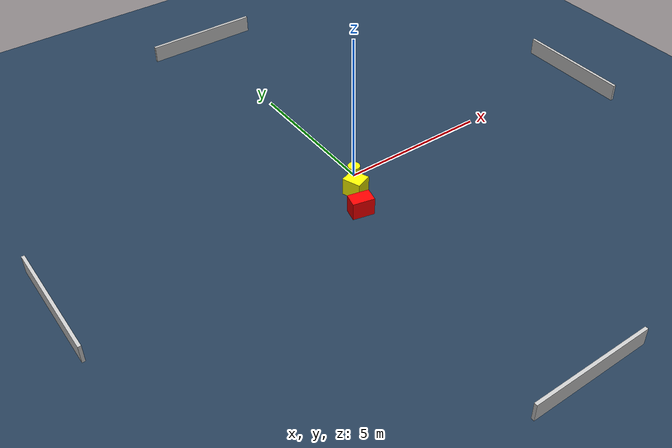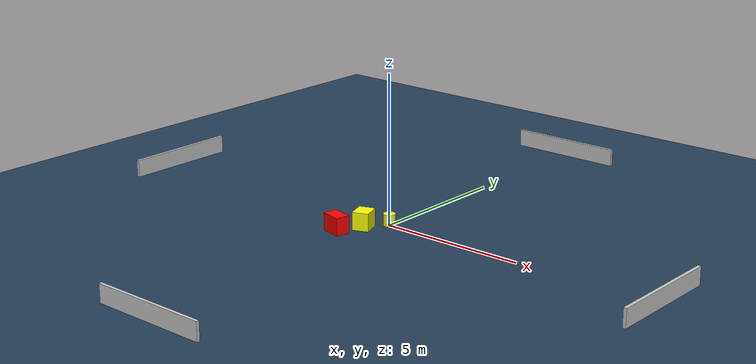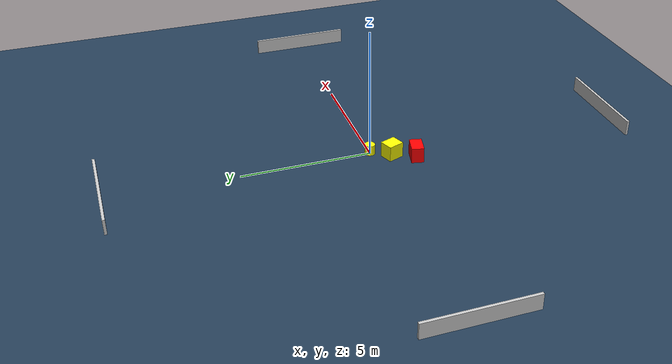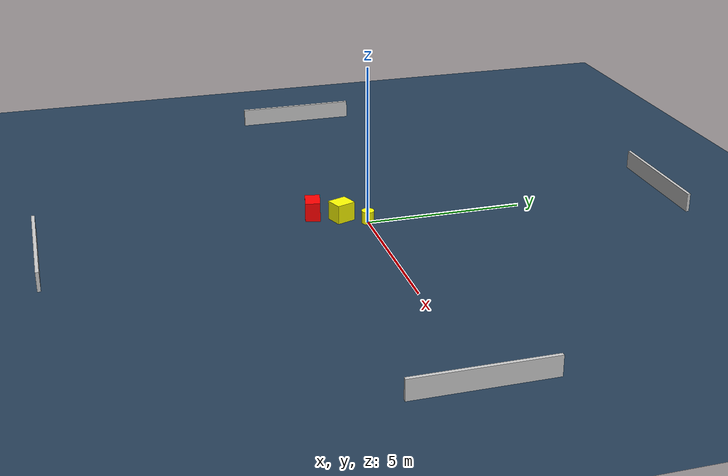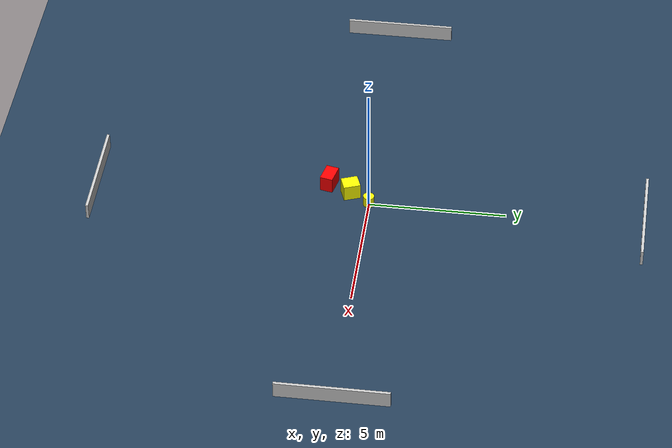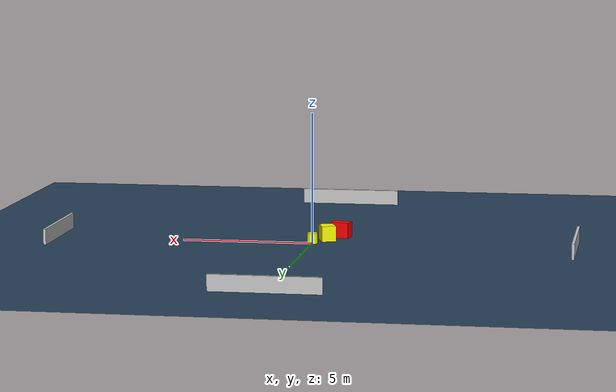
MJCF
<?xml version="1.0" ?>
<mujoco model="generated_environment">
  <option timestep="0.01" integrator="RK4" cone="elliptic"/>
  <default>
    <geom density="1"/>
  </default>
  <asset>
    <texture builtin="gradient" height="3072" name="skybox" rgb1="0.3 0.5 0.7" rgb2="0 0 0" type="skybox" width="512"/>
    <texture builtin="checker" height="300" name="groundplane" rgb1="0.2 0.3 0.4" rgb2="0.1 0.2 0.3" type="2d" width="300"/>
    <material name="groundplane" reflectance="0.2" texrepeat="5 5" texture="groundplane"/>
  </asset>
  <worldbody>
    <light dir="0 0 -1" directional="true" pos="0 0 1.5"/>
    <geom condim="3" friction="0.5 0.005 0.001" material="groundplane" name="floor" pos="0 0 0" size="0 0 0.05" type="plane"/>
    <body name="walls">
      <geom name="wall_1" condim="4" pos="-10.0 0.0 0.3" rgba="0.800000011920929 0.800000011920929 0.800000011920929 1.0" size="0.05 2.0 0.3" type="box"/>
      <geom name="wall_2" condim="4" pos="10.0 0.0 0.3" rgba="0.800000011920929 0.800000011920929 0.800000011920929 1.0" size="0.05 2.0 0.3" type="box"/>
      <geom name="wall_3" condim="4" pos="0.0 -10.0 0.3" rgba="0.800000011920929 0.800000011920929 0.800000011920929 1.0" size="2.0 0.05 0.3" type="box"/>
      <geom name="wall_4" condim="4" pos="0.0 10.0 0.3" rgba="0.800000011920929 0.800000011920929 0.800000011920929 1.0" size="2.0 0.05 0.3" type="box"/>
    </body>
    <body name="robot">
      <joint name="joint_x" type="slide" pos="0 0 0" axis="1 0 0"/>
      <joint name="joint_y" type="slide" pos="0 0 0" axis="0 1 0"/>
      <geom name="robot" type="cylinder" pos="0.0 0.0 0.2" size="0.2 0.2 0.0" mass="5.0" friction="1.0 0.005 0.0001" condim="4" rgba="1.0 1.0 0.0 1.0"/>
    </body>
    <body name="obstacle_1_movable">
      <geom name="obstacle_1_movable" condim="4" pos="-0.45870744337346997 -0.723697016620633 0.3" euler="0 0 110.48239020982946" friction="0.0 0.005 0.001" rgba="1.0 1.0 0.0 1.0" size="0.3104794188407809 0.2716593428078835 0.3" type="box" mass="0.1"/>
      <joint type="free"/>
    </body>
    <body name="obstacle_2_static">
      <geom name="obstacle_2_static" condim="4" pos="-0.8743612693733065 -1.5543606432867223 0.3" euler="0 0 347.35327304488396" friction="0.0 0.005 0.001" rgba="1.0 0.0 0.0 1.0" size="0.3585174798183296 0.2354331779113064 0.3" type="box"/>
    </body>
  </worldbody>
  <actuator>
    <motor name="actuator_x" joint="joint_x" gear="1" ctrlrange="-1 1"/>
    <motor name="actuator_y" joint="joint_y" gear="1" ctrlrange="-1 1"/>
  </actuator>
</mujoco>
